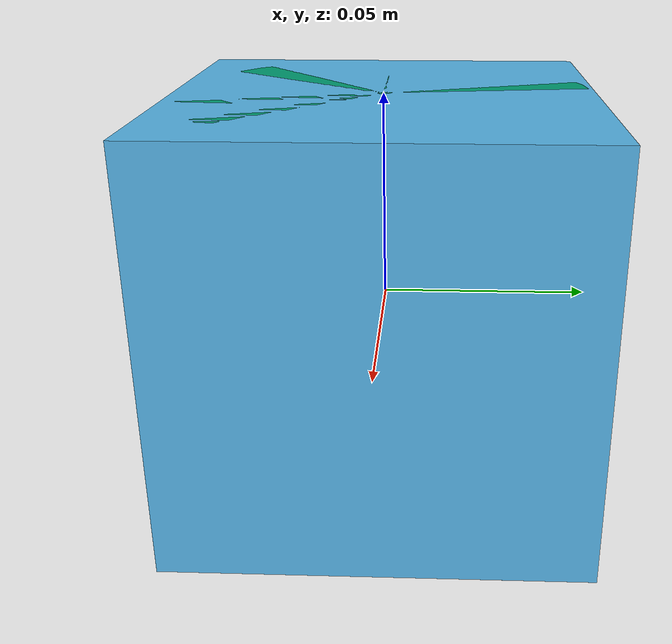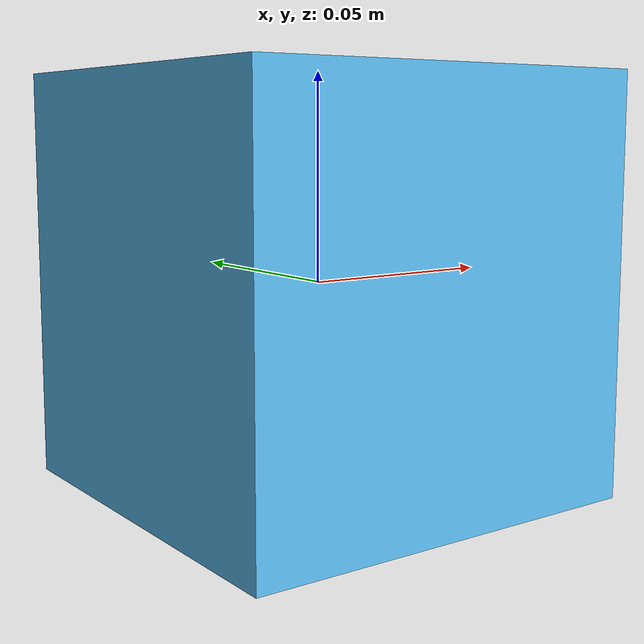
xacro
<?xml version="1.0"?>
<robot xmlns:xacro="http://www.ros.org/wiki/xacro" name="mit_robot">
  <xacro:arg name="use_mock_hardware" default="false"/>

  <link name="world"/>

  <link name="base_link">
    <visual>
      <geometry>
        <box size="0.1 0.1 0.1"/>
      </geometry>
    </visual>
  </link>

  <joint name="base_joint" type="fixed">
    <parent link="world"/>
    <child link="base_link"/>
  </joint>

  <link name="hip_link">
    <visual>
      <geometry>
        <cylinder length="0.1" radius="0.05"/>
      </geometry>
    </visual>
  </link>

  <joint name="hip_joint" type="revolute">
    <parent link="base_link"/>
    <child link="hip_link"/>
    <axis xyz="0 1 0"/>
    <limit lower="-1.57" upper="1.57" effort="10.0" velocity="10.0"/>
  </joint>

  <link name="knee_link">
    <visual>
      <geometry>
        <cylinder length="0.1" radius="0.05"/>
      </geometry>
    </visual>
  </link>

  <joint name="knee_joint" type="revolute">
    <parent link="hip_link"/>
    <child link="knee_link"/>
    <axis xyz="0 1 0"/>
    <limit lower="-1.57" upper="1.57" effort="10.0" velocity="10.0"/>
  </joint>

  <link name="ankle_link">
    <visual>
      <geometry>
        <cylinder length="0.1" radius="0.05"/>
      </geometry>
    </visual>
  </link>

  <joint name="ankle_joint" type="revolute">
    <parent link="knee_link"/>
    <child link="ankle_link"/>
    <axis xyz="0 1 0"/>
    <limit lower="-1.57" upper="1.57" effort="10.0" velocity="10.0"/>
  </joint>

  <ros2_control name="LeftLegSystem" type="system">
    <xacro:unless value="$(arg use_mock_hardware)">
      <hardware>
        <plugin>odrive_ros2_control_plugin/ODriveHardwareInterface</plugin>
        <param name="can">can0</param>
      </hardware>
    </xacro:unless>
    <xacro:if value="$(arg use_mock_hardware)">
      <hardware>
        <plugin>mock_components/GenericSystem</plugin>
        <param name="calculate_dynamics">false</param>
      </hardware>
    </xacro:if>

    <joint name="hip_joint">
      <param name="node_id">0</param>
      <command_interface name="position"/>
      <command_interface name="velocity"/>
      <command_interface name="effort"/>
      <command_interface name="kp"/>
      <command_interface name="kd"/>
      <state_interface name="position"/>
      <state_interface name="velocity"/>
      <state_interface name="effort"/>
    </joint>

    <joint name="knee_joint">
      <param name="node_id">1</param>
      <command_interface name="position"/>
      <command_interface name="velocity"/>
      <command_interface name="effort"/>
      <command_interface name="kp"/>
      <command_interface name="kd"/>
      <state_interface name="position"/>
      <state_interface name="velocity"/>
      <state_interface name="effort"/>
    </joint>

    <joint name="ankle_joint">
      <param name="node_id">2</param>
      <command_interface name="position"/>
      <command_interface name="velocity"/>
      <command_interface name="effort"/>
      <command_interface name="kp"/>
      <command_interface name="kd"/>
      <state_interface name="position"/>
      <state_interface name="velocity"/>
      <state_interface name="effort"/>
    </joint>
  </ros2_control>

</robot>
